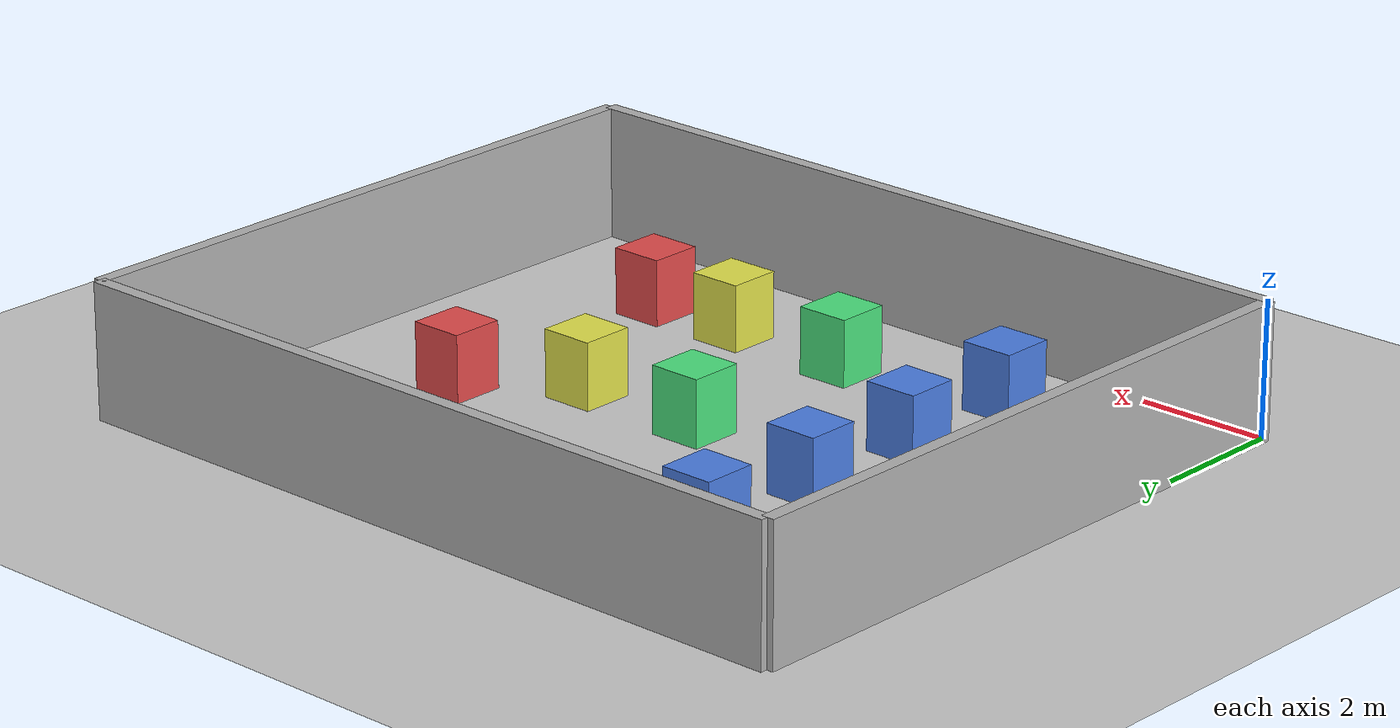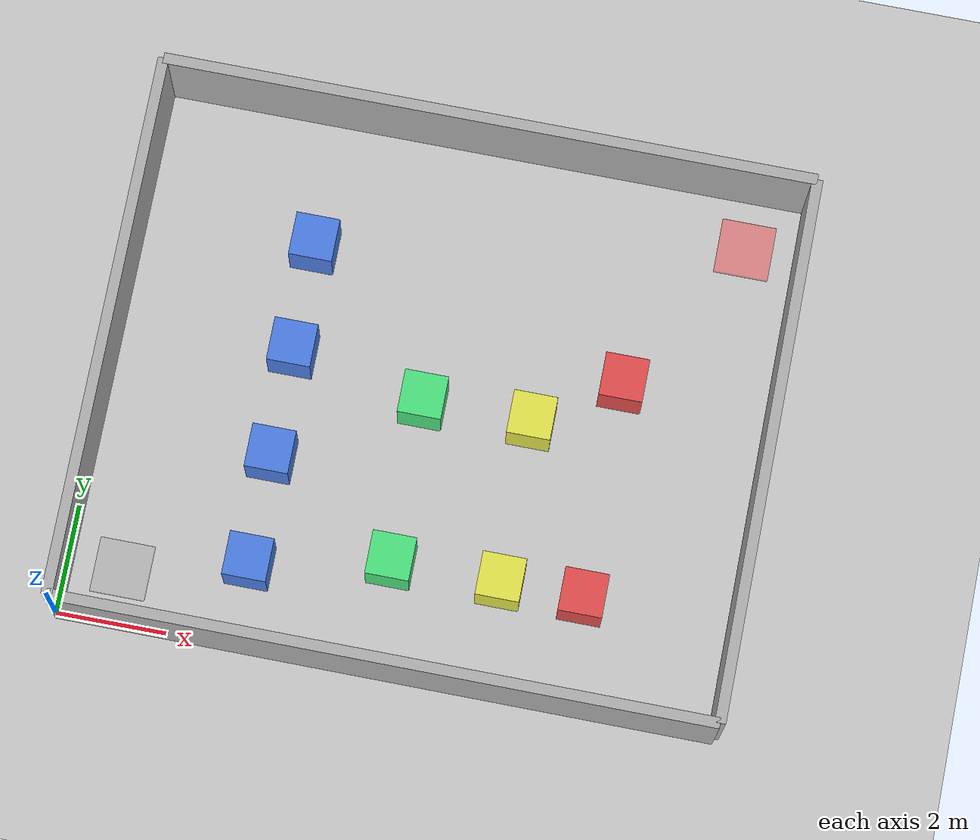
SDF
<?xml version="1.0"?>
<sdf version="1.6">
  <world name="smart_factory">

    <!-- 物理引擎设置 -->
    <physics type="ode">
      <max_step_size>0.001</max_step_size>
      <real_time_factor>1</real_time_factor>
      <real_time_update_rate>1000</real_time_update_rate>
    </physics>

    <!-- 光照 -->
    <include>
      <uri>model://sun</uri>
    </include>

    <!-- 地面 -->
    <include>
      <uri>model://ground_plane</uri>
    </include>

    <!-- 工厂墙壁（12m x 10m矩形区域） -->
    <!-- 北墙 -->
    <model name="wall_north">
      <static>true</static>
      <pose>6 0 1 0 0 0</pose>
      <link name="link">
        <collision name="collision">
          <geometry>
            <box>
              <size>12 0.2 2</size>
            </box>
          </geometry>
        </collision>
        <visual name="visual">
          <geometry>
            <box>
              <size>12 0.2 2</size>
            </box>
          </geometry>
          <material>
            <ambient>0.5 0.5 0.5 1</ambient>
            <diffuse>0.7 0.7 0.7 1</diffuse>
          </material>
        </visual>
      </link>
    </model>

    <!-- 南墙 -->
    <model name="wall_south">
      <static>true</static>
      <pose>6 10 1 0 0 0</pose>
      <link name="link">
        <collision name="collision">
          <geometry>
            <box>
              <size>12 0.2 2</size>
            </box>
          </geometry>
        </collision>
        <visual name="visual">
          <geometry>
            <box>
              <size>12 0.2 2</size>
            </box>
          </geometry>
          <material>
            <ambient>0.5 0.5 0.5 1</ambient>
            <diffuse>0.7 0.7 0.7 1</diffuse>
          </material>
        </visual>
      </link>
    </model>

    <!-- 东墙 -->
    <model name="wall_east">
      <static>true</static>
      <pose>12 5 1 0 0 0</pose>
      <link name="link">
        <collision name="collision">
          <geometry>
            <box>
              <size>0.2 10 2</size>
            </box>
          </geometry>
        </collision>
        <visual name="visual">
          <geometry>
            <box>
              <size>0.2 10 2</size>
            </box>
          </geometry>
          <material>
            <ambient>0.5 0.5 0.5 1</ambient>
            <diffuse>0.7 0.7 0.7 1</diffuse>
          </material>
        </visual>
      </link>
    </model>

    <!-- 西墙 -->
    <model name="wall_west">
      <static>true</static>
      <pose>0 5 1 0 0 0</pose>
      <link name="link">
        <collision name="collision">
          <geometry>
            <box>
              <size>0.2 10 2</size>
            </box>
          </geometry>
        </collision>
        <visual name="visual">
          <geometry>
            <box>
              <size>0.2 10 2</size>
            </box>
          </geometry>
          <material>
            <ambient>0.5 0.5 0.5 1</ambient>
            <diffuse>0.7 0.7 0.7 1</diffuse>
          </material>
        </visual>
      </link>
    </model>

    <!-- 梳棉机区域（4台） -->
    <model name="carding_machine_0">
      <static>true</static>
      <pose>3.25 1.5 0.5 0 0 0</pose>
      <link name="link">
        <collision name="collision">
          <geometry>
            <box>
              <size>0.8 0.8 1.0</size>
            </box>
          </geometry>
        </collision>
        <visual name="visual">
          <geometry>
            <box>
              <size>0.8 0.8 1.0</size>
            </box>
          </geometry>
          <material>
            <ambient>0.2 0.4 0.8 1</ambient>
            <diffuse>0.3 0.5 0.9 1</diffuse>
          </material>
        </visual>
      </link>
    </model>

    <model name="carding_machine_1">
      <static>true</static>
      <pose>3.25 3.5 0.5 0 0 0</pose>
      <link name="link">
        <collision name="collision">
          <geometry>
            <box>
              <size>0.8 0.8 1.0</size>
            </box>
          </geometry>
        </collision>
        <visual name="visual">
          <geometry>
            <box>
              <size>0.8 0.8 1.0</size>
            </box>
          </geometry>
          <material>
            <ambient>0.2 0.4 0.8 1</ambient>
            <diffuse>0.3 0.5 0.9 1</diffuse>
          </material>
        </visual>
      </link>
    </model>

    <model name="carding_machine_2">
      <static>true</static>
      <pose>3.25 5.5 0.5 0 0 0</pose>
      <link name="link">
        <collision name="collision">
          <geometry>
            <box>
              <size>0.8 0.8 1.0</size>
            </box>
          </geometry>
        </collision>
        <visual name="visual">
          <geometry>
            <box>
              <size>0.8 0.8 1.0</size>
            </box>
          </geometry>
          <material>
            <ambient>0.2 0.4 0.8 1</ambient>
            <diffuse>0.3 0.5 0.9 1</diffuse>
          </material>
        </visual>
      </link>
    </model>

    <model name="carding_machine_3">
      <static>true</static>
      <pose>3.25 7.5 0.5 0 0 0</pose>
      <link name="link">
        <collision name="collision">
          <geometry>
            <box>
              <size>0.8 0.8 1.0</size>
            </box>
          </geometry>
        </collision>
        <visual name="visual">
          <geometry>
            <box>
              <size>0.8 0.8 1.0</size>
            </box>
          </geometry>
          <material>
            <ambient>0.2 0.4 0.8 1</ambient>
            <diffuse>0.3 0.5 0.9 1</diffuse>
          </material>
        </visual>
      </link>
    </model>

    <!-- 拉伸机1区域（2台） -->
    <model name="drawing1_machine_0">
      <static>true</static>
      <pose>5.75 2.0 0.5 0 0 0</pose>
      <link name="link">
        <collision name="collision">
          <geometry>
            <box>
              <size>0.8 0.8 1.0</size>
            </box>
          </geometry>
        </collision>
        <visual name="visual">
          <geometry>
            <box>
              <size>0.8 0.8 1.0</size>
            </box>
          </geometry>
          <material>
            <ambient>0.2 0.8 0.4 1</ambient>
            <diffuse>0.3 0.9 0.5 1</diffuse>
          </material>
        </visual>
      </link>
    </model>

    <model name="drawing1_machine_1">
      <static>true</static>
      <pose>5.75 5.0 0.5 0 0 0</pose>
      <link name="link">
        <collision name="collision">
          <geometry>
            <box>
              <size>0.8 0.8 1.0</size>
            </box>
          </geometry>
        </collision>
        <visual name="visual">
          <geometry>
            <box>
              <size>0.8 0.8 1.0</size>
            </box>
          </geometry>
          <material>
            <ambient>0.2 0.8 0.4 1</ambient>
            <diffuse>0.3 0.9 0.5 1</diffuse>
          </material>
        </visual>
      </link>
    </model>

    <!-- 拉伸机2区域（2台） -->
    <model name="drawing2_machine_0">
      <static>true</static>
      <pose>7.75 2.0 0.5 0 0 0</pose>
      <link name="link">
        <collision name="collision">
          <geometry>
            <box>
              <size>0.8 0.8 1.0</size>
            </box>
          </geometry>
        </collision>
        <visual name="visual">
          <geometry>
            <box>
              <size>0.8 0.8 1.0</size>
            </box>
          </geometry>
          <material>
            <ambient>0.8 0.8 0.2 1</ambient>
            <diffuse>0.9 0.9 0.3 1</diffuse>
          </material>
        </visual>
      </link>
    </model>

    <model name="drawing2_machine_1">
      <static>true</static>
      <pose>7.75 5.0 0.5 0 0 0</pose>
      <link name="link">
        <collision name="collision">
          <geometry>
            <box>
              <size>0.8 0.8 1.0</size>
            </box>
          </geometry>
        </collision>
        <visual name="visual">
          <geometry>
            <box>
              <size>0.8 0.8 1.0</size>
            </box>
          </geometry>
          <material>
            <ambient>0.8 0.8 0.2 1</ambient>
            <diffuse>0.9 0.9 0.3 1</diffuse>
          </material>
        </visual>
      </link>
    </model>

    <!-- 粗纱机区域（2台） -->
    <model name="roving_machine_0">
      <static>true</static>
      <pose>9.25 2.0 0.5 0 0 0</pose>
      <link name="link">
        <collision name="collision">
          <geometry>
            <box>
              <size>0.8 0.8 1.0</size>
            </box>
          </geometry>
        </collision>
        <visual name="visual">
          <geometry>
            <box>
              <size>0.8 0.8 1.0</size>
            </box>
          </geometry>
          <material>
            <ambient>0.8 0.2 0.2 1</ambient>
            <diffuse>0.9 0.3 0.3 1</diffuse>
          </material>
        </visual>
      </link>
    </model>

    <model name="roving_machine_1">
      <static>true</static>
      <pose>9.25 6.0 0.5 0 0 0</pose>
      <link name="link">
        <collision name="collision">
          <geometry>
            <box>
              <size>0.8 0.8 1.0</size>
            </box>
          </geometry>
        </collision>
        <visual name="visual">
          <geometry>
            <box>
              <size>0.8 0.8 1.0</size>
            </box>
          </geometry>
          <material>
            <ambient>0.8 0.2 0.2 1</ambient>
            <diffuse>0.9 0.3 0.3 1</diffuse>
          </material>
        </visual>
      </link>
    </model>

    <!-- 存储区域标记（可视化） -->
    <model name="empty_storage">
      <static>true</static>
      <pose>1.0 1.0 0.05 0 0 0</pose>
      <link name="link">
        <visual name="visual">
          <geometry>
            <box>
              <size>1.0 1.0 0.1</size>
            </box>
          </geometry>
          <material>
            <ambient>0.6 0.6 0.6 0.5</ambient>
            <diffuse>0.7 0.7 0.7 0.5</diffuse>
          </material>
        </visual>
      </link>
    </model>

    <model name="completed_storage">
      <static>true</static>
      <pose>11.0 9.0 0.05 0 0 0</pose>
      <link name="link">
        <visual name="visual">
          <geometry>
            <box>
              <size>1.0 1.0 0.1</size>
            </box>
          </geometry>
          <material>
            <ambient>1.0 0.2 0.2 0.5</ambient>
            <diffuse>1.0 0.3 0.3 0.5</diffuse>
          </material>
        </visual>
      </link>
    </model>

    <!-- GUI插件 -->
    <gui fullscreen="0">
      <camera name="user_camera">
        <pose>6.0 -5.0 8.0 0 0.6 1.57</pose>
      </camera>
    </gui>

  </world>
</sdf>
